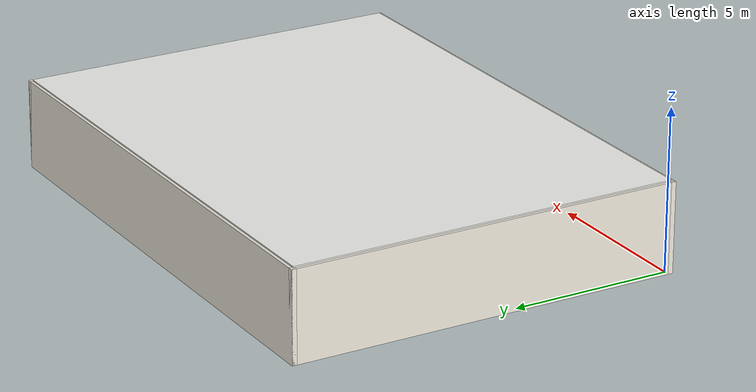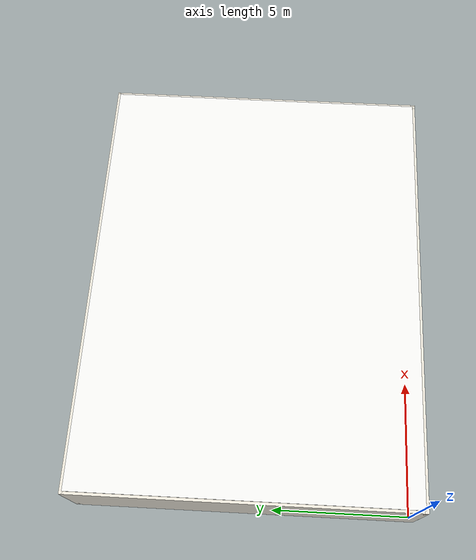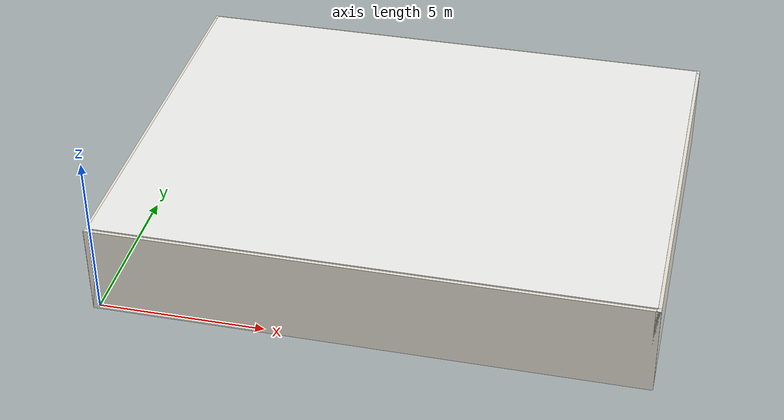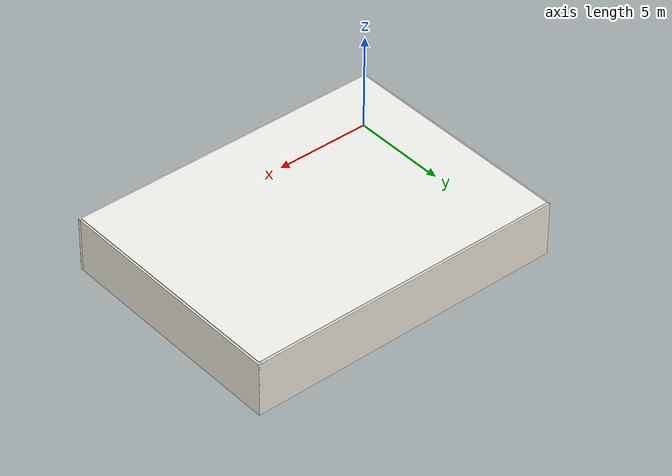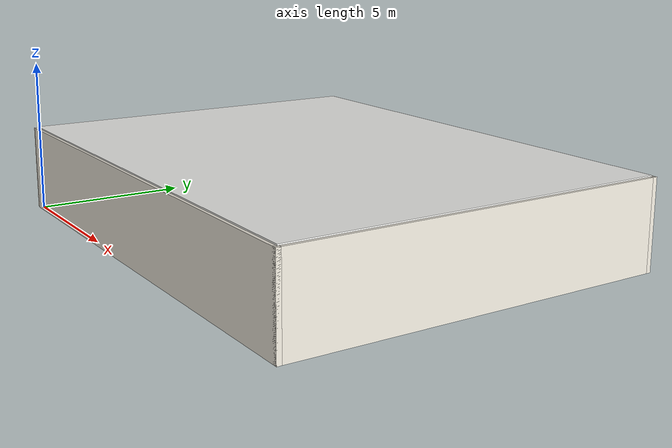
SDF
<?xml version="1.0" encoding="utf-8"?>
<sdf version='1.8'>
  <world name='benchmark_v2'>

    <physics name="10ms" type="ignored">
      <max_step_size>0.010</max_step_size>
      <real_time_factor>1.0</real_time_factor>
      <real_time_update_rate>100</real_time_update_rate>
    </physics>

    <scene>
      <shadows>false</shadows>
      <grid>true</grid>
      <ambient>0.4 0.4 0.4 1</ambient>
      <background>0.6 0.6 0.6 1</background>
    </scene>

    <gravity>0 0 -9.8</gravity>
    <magnetic_field>5.5645e-06 2.28758e-05 -4.23884e-05</magnetic_field>
    <atmosphere type='adiabatic' />

    <light name='sun' type='directional'>
      <pose>0 0 10 0 0 0</pose>
      <diffuse>0.55 0.55 0.55 1</diffuse>
      <specular>0.1 0.1 0.1 1</specular>
      <direction>-0.5 0.1 -0.9</direction>
      <cast_shadows>false</cast_shadows>
    </light>

    <!-- Kuhinja: hladnija bijela svjetlost (fluo) -->
    <light name='light_kitchen' type='point'>
      <pose>8.0 2.5 2.5 0 0 0</pose>
      <diffuse>1.0 1.0 0.96 1</diffuse>
      <specular>0.15 0.15 0.15 1</specular>
      <attenuation>
        <range>15</range>
        <constant>0.25</constant>
        <linear>0.03</linear>
        <quadratic>0.006</quadratic>
      </attenuation>
      <cast_shadows>false</cast_shadows>
    </light>

    <!-- Dnevna soba: topla bijela (halogen) -->
    <light name='light_living' type='point'>
      <pose>11.0 9.0 2.5 0 0 0</pose>
      <diffuse>1.0 0.97 0.88 1</diffuse>
      <specular>0.12 0.12 0.10 1</specular>
      <attenuation>
        <range>14</range>
        <constant>0.28</constant>
        <linear>0.04</linear>
        <quadratic>0.007</quadratic>
      </attenuation>
      <cast_shadows>false</cast_shadows>
    </light>

    <!-- Spavaća soba: topla, malo prigušena -->
    <light name='light_bedroom' type='point'>
      <pose>3.0 9.0 2.5 0 0 0</pose>
      <diffuse>0.95 0.90 0.80 1</diffuse>
      <specular>0.08 0.08 0.07 1</specular>
      <attenuation>
        <range>10</range>
        <constant>0.30</constant>
        <linear>0.05</linear>
        <quadratic>0.010</quadratic>
      </attenuation>
      <cast_shadows>false</cast_shadows>
    </light>

    <!-- ===========================================================
         PODOVI  (odvojeni modeli po sobama radi razlicitih materijala)
    =========================================================== -->

    <!-- Kuhinja: keramicke plocice (X:[0,16], Y:[0,5])
         Svjetlo sive, visoki specular = sjajno -->
    <model name='floor_kitchen'>
      <static>true</static>
      <pose>8.0 2.5 -0.02 0 0 0</pose>
      <link name='link'>
        <collision name='col'>
          <geometry>
            <box>
              <size>16.0 5.0 0.04</size>
            </box>
          </geometry>
        </collision>
        <visual name='vis'>
          <geometry>
            <box>
              <size>16.0 5.0 0.04</size>
            </box>
          </geometry>
          <material>
            <ambient>0.78 0.78 0.76 1</ambient>
            <diffuse>0.86 0.86 0.84 1</diffuse>
            <specular>0.40 0.40 0.40 1</specular>
            <emissive>0 0 0 1</emissive>
          </material>
        </visual>
      </link>
    </model>

    <!-- Dnevna soba + hodnik: parket (X:[6,16], Y:[5,12])
         Toplo smedje, malo sjajno -->
    <model name='floor_living'>
      <static>true</static>
      <pose>11.0 8.5 -0.02 0 0 0</pose>
      <link name='link'>
        <collision name='col'>
          <geometry>
            <box>
              <size>10.0 7.0 0.04</size>
            </box>
          </geometry>
        </collision>
        <visual name='vis'>
          <geometry>
            <box>
              <size>10.0 7.0 0.04</size>
            </box>
          </geometry>
          <material>
            <ambient>0.35 0.22 0.10 1</ambient>
            <diffuse>0.50 0.32 0.14 1</diffuse>
            <specular>0.10 0.07 0.03 1</specular>
            <emissive>0 0 0 1</emissive>
          </material>
        </visual>
      </link>
    </model>

    <!-- Spavaća soba: tepih (X:[0,6], Y:[5,12])
         Béž/krem, bez sjaja -->
    <model name='floor_bedroom'>
      <static>true</static>
      <pose>3.0 8.5 -0.02 0 0 0</pose>
      <link name='link'>
        <collision name='col'>
          <geometry>
            <box>
              <size>6.0 7.0 0.04</size>
            </box>
          </geometry>
        </collision>
        <visual name='vis'>
          <geometry>
            <box>
              <size>6.0 7.0 0.04</size>
            </box>
          </geometry>
          <material>
            <ambient>0.62 0.55 0.43 1</ambient>
            <diffuse>0.72 0.64 0.50 1</diffuse>
            <specular>0.02 0.02 0.02 1</specular>
            <emissive>0 0 0 1</emissive>
          </material>
        </visual>
      </link>
    </model>

    <!-- ===========================================================
         PLAFON (jedan komad, pomaže rasprsivanju svjetlosti)
    =========================================================== -->

    <model name='ceiling'>
      <static>true</static>
      <pose>8.0 6.0 2.82 0 0 0</pose>
      <link name='link'>
        <visual name='vis'>
          <geometry>
            <box>
              <size>16.1 12.1 0.04</size>
            </box>
          </geometry>
          <material>
            <ambient>0.96 0.96 0.95 1</ambient>
            <diffuse>0.96 0.96 0.95 1</diffuse>
            <specular>0.05 0.05 0.05 1</specular>
            <emissive>0 0 0 1</emissive>
          </material>
        </visual>
      </link>
    </model>

    <!-- Juzni zid  Y=0 -->
    <model name='wall_south'>
      <static>true</static>
      <pose>8.0 -0.075 1.4 0 0 0</pose>
      <link name='link'>
        <collision name='col'>
          <geometry>
            <box>
              <size>16.3 0.15 2.8</size>
            </box>
          </geometry>
        </collision>
        <visual name='vis'>
          <geometry>
            <box>
              <size>16.3 0.15 2.8</size>
            </box>
          </geometry>
          <material>
            <ambient>0.91 0.89 0.84 1</ambient>
            <diffuse>0.93 0.91 0.86 1</diffuse>
            <specular>0.06 0.06 0.06 1</specular>
            <emissive>0 0 0 1</emissive>
          </material>
        </visual>
      </link>
    </model>

    <!-- Sjeverni zid  Y=12 -->
    <model name='wall_north'>
      <static>true</static>
      <pose>8.0 12.075 1.4 0 0 0</pose>
      <link name='link'>
        <collision name='col'>
          <geometry>
            <box>
              <size>16.3 0.15 2.8</size>
            </box>
          </geometry>
        </collision>
        <visual name='vis'>
          <geometry>
            <box>
              <size>16.3 0.15 2.8</size>
            </box>
          </geometry>
          <material>
            <ambient>0.91 0.89 0.84 1</ambient>
            <diffuse>0.93 0.91 0.86 1</diffuse>
            <specular>0.06 0.06 0.06 1</specular>
            <emissive>0 0 0 1</emissive>
          </material>
        </visual>
      </link>
    </model>

    <!-- Zapadni zid  X=0 -->
    <model name='wall_west'>
      <static>true</static>
      <pose>-0.075 6.0 1.4 0 0 0</pose>
      <link name='link'>
        <collision name='col'>
          <geometry>
            <box>
              <size>0.15 12.3 2.8</size>
            </box>
          </geometry>
        </collision>
        <visual name='vis'>
          <geometry>
            <box>
              <size>0.15 12.3 2.8</size>
            </box>
          </geometry>
          <material>
            <ambient>0.91 0.89 0.84 1</ambient>
            <diffuse>0.93 0.91 0.86 1</diffuse>
            <specular>0.06 0.06 0.06 1</specular>
            <emissive>0 0 0 1</emissive>
          </material>
        </visual>
      </link>
    </model>

    <!-- Istocni zid  X=16 -->
    <model name='wall_east'>
      <static>true</static>
      <pose>16.075 6.0 1.4 0 0 0</pose>
      <link name='link'>
        <collision name='col'>
          <geometry>
            <box>
              <size>0.15 12.3 2.8</size>
            </box>
          </geometry>
        </collision>
        <visual name='vis'>
          <geometry>
            <box>
              <size>0.15 12.3 2.8</size>
            </box>
          </geometry>
          <material>
            <ambient>0.91 0.89 0.84 1</ambient>
            <diffuse>0.93 0.91 0.86 1</diffuse>
            <specular>0.06 0.06 0.06 1</specular>
            <emissive>0 0 0 1</emissive>
          </material>
        </visual>
      </link>
    </model>

    <model name='iwall_h_left'>
      <static>true</static>
      <pose>3.25 5.0 1.4 0 0 0</pose>
      <link name='link'>
        <collision name='col'>
          <geometry>
            <box>
              <size>6.5 0.15 2.8</size>
            </box>
          </geometry>
        </collision>
        <visual name='vis'>
          <geometry>
            <box>
              <size>6.5 0.15 2.8</size>
            </box>
          </geometry>
          <material>
            <ambient>0.88 0.88 0.86 1</ambient>
            <diffuse>0.90 0.90 0.88 1</diffuse>
            <specular>0.06 0.06 0.06 1</specular>
            <emissive>0 0 0 1</emissive>
          </material>
        </visual>
      </link>
    </model>

    <model name='iwall_h_right'>
      <static>true</static>
      <pose>12.75 5.0 1.4 0 0 0</pose>
      <link name='link'>
        <collision name='col'>
          <geometry>
            <box>
              <size>6.5 0.15 2.8</size>
            </box>
          </geometry>
        </collision>
        <visual name='vis'>
          <geometry>
            <box>
              <size>6.5 0.15 2.8</size>
            </box>
          </geometry>
          <material>
            <ambient>0.88 0.88 0.86 1</ambient>
            <diffuse>0.90 0.90 0.88 1</diffuse>
            <specular>0.06 0.06 0.06 1</specular>
            <emissive>0 0 0 1</emissive>
          </material>
        </visual>
      </link>
    </model>

    <model name='iwall_v_bottom'>
      <static>true</static>
      <pose>6.0 5.75 1.4 0 0 0</pose>
      <link name='link'>
        <collision name='col'>
          <geometry>
            <box>
              <size>0.15 1.5 2.8</size>
            </box>
          </geometry>
        </collision>
        <visual name='vis'>
          <geometry>
            <box>
              <size>0.15 1.5 2.8</size>
            </box>
          </geometry>
          <material>
            <ambient>0.88 0.88 0.86 1</ambient>
            <diffuse>0.90 0.90 0.88 1</diffuse>
            <specular>0.06 0.06 0.06 1</specular>
            <emissive>0 0 0 1</emissive>
          </material>
        </visual>
      </link>
    </model>

    <model name='iwall_v_top'>
      <static>true</static>
      <pose>6.0 10.25 1.4 0 0 0</pose>
      <link name='link'>
        <collision name='col'>
          <geometry>
            <box>
              <size>0.15 3.5 2.8</size>
            </box>
          </geometry>
        </collision>
        <visual name='vis'>
          <geometry>
            <box>
              <size>0.15 3.5 2.8</size>
            </box>
          </geometry>
          <material>
            <ambient>0.88 0.88 0.86 1</ambient>
            <diffuse>0.90 0.90 0.88 1</diffuse>
            <specular>0.06 0.06 0.06 1</specular>
            <emissive>0 0 0 1</emissive>
          </material>
        </visual>
      </link>
    </model>

  </world>
</sdf>
